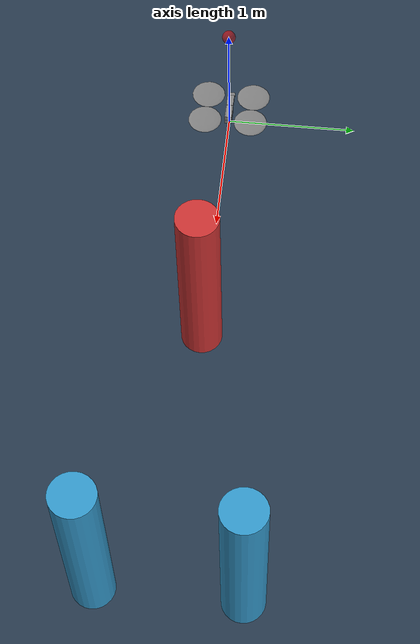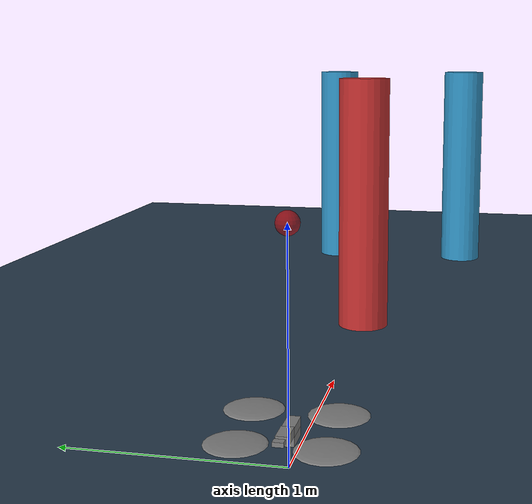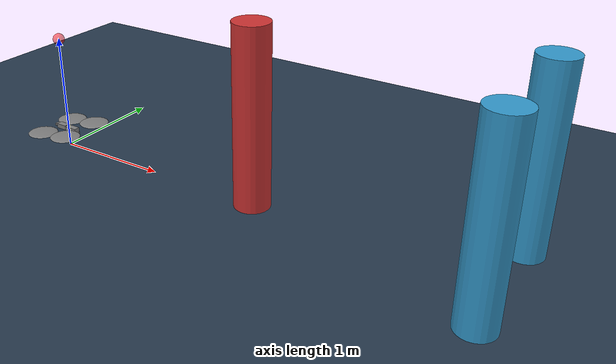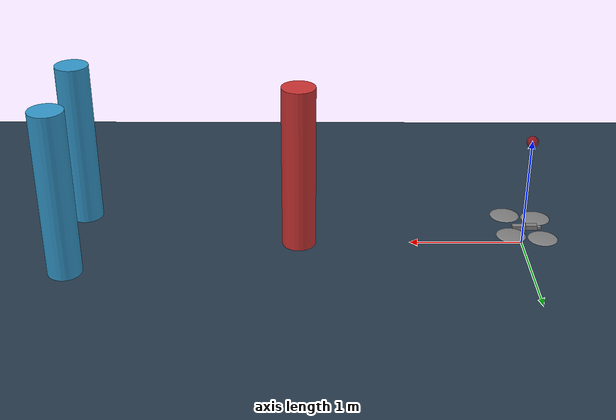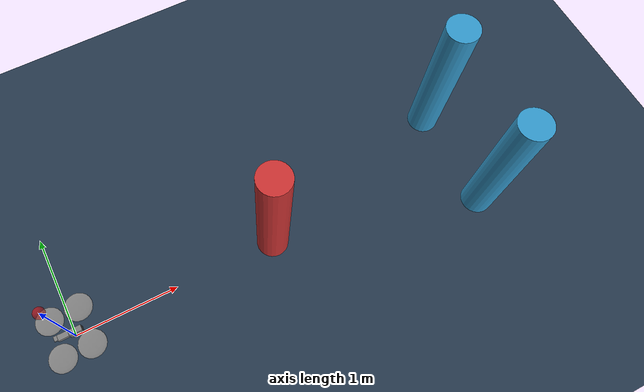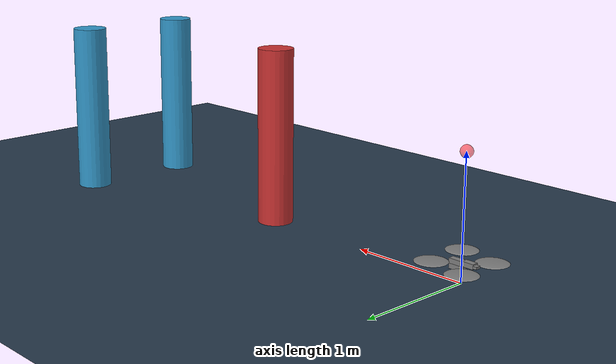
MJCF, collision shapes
<mujoco model="Skydio X2">
  <compiler autolimits="true" assetdir="assets"/>

  <option timestep="0.01" density="1.225" viscosity="1.8e-5"/>

  <default>
    <default class="x2">
      <geom mass="0"/>
      <motor ctrlrange="0 13"/>9
      <mesh scale="0.01 0.01 0.01"/>
      <default class="visual">
        <geom group="2" type="mesh" contype="0" conaffinity="0"/>
      </default>
      <default class="collision">
        <geom group="3" type="box"/>
        <default class="rotor">
          <geom type="ellipsoid" size=".13 .13 .01"/>
        </default>
      </default>
      <site group="5"/>
    </default>
  </default>

  <asset>

    <texture type="skybox" builtin="gradient" rgb1="0.3 0.5 0.7" rgb2="0 0 0" width="512" height="512"/>

    <texture name="texplane" type="2d" builtin="checker" rgb1=".2 .3 .4" rgb2=".1 .15 .2" width="512" height="512" mark="cross" markrgb=".8 .8 .8"/>

    <material name="matplane" reflectance="0.3" texture="texplane" texrepeat="1 1" texuniform="true"/>

    <texture type="2d" file="X2_lowpoly_texture_SpinningProps_1024.png"/>
    <material name="phong3SG" texture="X2_lowpoly_texture_SpinningProps_1024"/>
    <material name="invisible" rgba="0 0 0 0"/>

    <mesh class="x2" file="X2_lowpoly.obj"/>
  </asset>

  <worldbody>

    <light directional="true" diffuse=".8 .8 .8" specular=".2 .2 .2" pos="0 0 5" dir="0 -1 -1" castshadow="true"/>

    <geom name="floor" pos="0 0 0" size="0 0 1" type="plane" material="matplane" condim="3"/>
  <body name="target_waypoint" mocap="true" pos="0 0 1">
        <geom type="sphere" size="0.05" rgba="1 0 0 0.5"
              contype="0" conaffinity="0"/>
    </body>

    <body name="ostacolo_1" pos="2.0 0 0.75">
        <geom type="cylinder" size="0.15 0.75" rgba="0.8 0.2 0.2 1"
              contype="1" conaffinity="1"/>
    </body>

    <body name="ostacolo_gate_sx" pos="4.0 0.5 0.75">
        <geom type="cylinder" size="0.15 0.75" rgba="0.2 0.6 0.8 1"
              contype="1" conaffinity="1"/>
    </body>

    <body name="ostacolo_gate_dx" pos="4.0 -0.5 0.75">
        <geom type="cylinder" size="0.15 0.75" rgba="0.2 0.6 0.8 1"
              contype="1" conaffinity="1"/>
    </body>

    <body name="x2" pos="0 0 0.1" childclass="x2">
      <freejoint/>
      <camera name="track" pos="-1 0 .5" xyaxes="0 -1 0 1 0 2" mode="trackcom"/>
      <site name="imu" pos="0 0 .02"/>
      <geom material="phong3SG" mesh="X2_lowpoly" class="visual" quat="0 0 1 1"/>
      <geom class="collision" size=".06 .027 .02" pos=".04 0 .02"/>
      <geom class="collision" size=".06 .027 .02" pos=".04 0 .06"/>
      <geom class="collision" size=".05 .027 .02" pos="-.07 0 .065"/>
      <geom class="collision" size=".023 .017 .01" pos="-.137 .008 .065" quat="1 0 0 1"/>
      <geom name="rotor1" class="rotor" pos="-.14 -.18 .05" mass=".25"/>
      <geom name="rotor2" class="rotor" pos="-.14 .18 .05" mass=".25"/>
      <geom name="rotor3" class="rotor" pos=".14 .18 .08" mass=".25"/>
      <geom name="rotor4" class="rotor" pos=".14 -.18 .08" mass=".25"/>
      <geom size=".16 .04 .02" pos="0 0 0.02" type="ellipsoid" mass=".325" class="visual" material="invisible"/>
      <site name="thrust1" pos="-.14 -.18 .05"/>
      <site name="thrust2" pos="-.14 .18 .05"/>
      <site name="thrust3" pos=".14 .18 .08"/>
      <site name="thrust4" pos=".14 -.18 .08"/>
    </body>
  </worldbody>

  <actuator>
    <motor class="x2" name="thrust1" site="thrust1" gear="0 0 1 0 0 -.0201"/>
    <motor class="x2" name="thrust2" site="thrust2" gear="0 0 1 0 0 .0201"/>
    <motor class="x2" name="thrust3" site="thrust3" gear="0 0 1 0 0 -.0201"/>
    <motor class="x2" name="thrust4" site="thrust4" gear="0 0 1 0 0 .0201"/>
  </actuator>

  <sensor>
    <gyro name="body_gyro" site="imu"/>
    <accelerometer name="body_linacc" site="imu"/>
    <framequat name="body_quat" objtype="site" objname="imu"/>
  </sensor>

  <keyframe>
    <key name="hover" qpos="0 0 .3 1 0 0 0" ctrl="3.2495625 3.2495625 3.2495625 3.2495625"/>
  </keyframe>
</mujoco>
